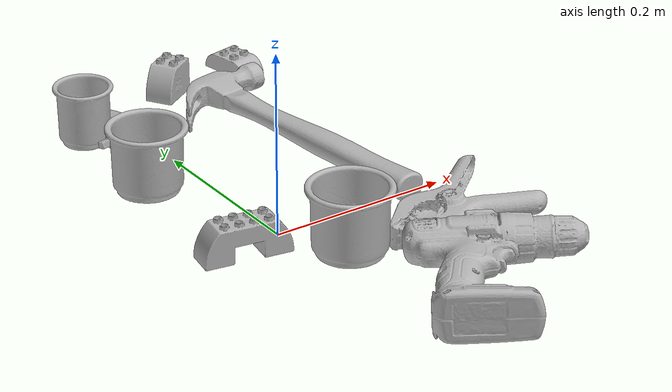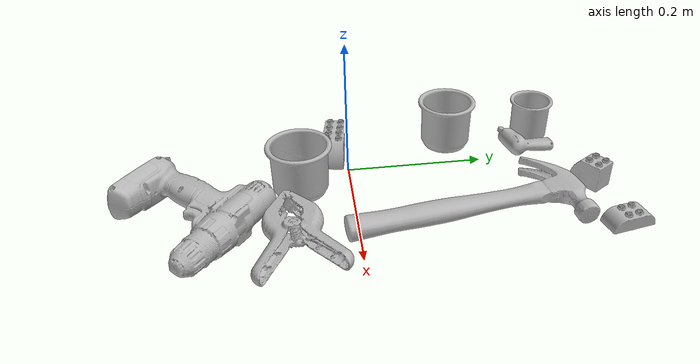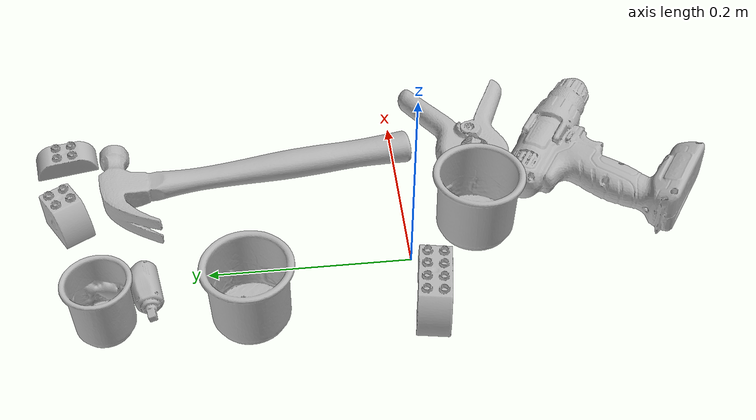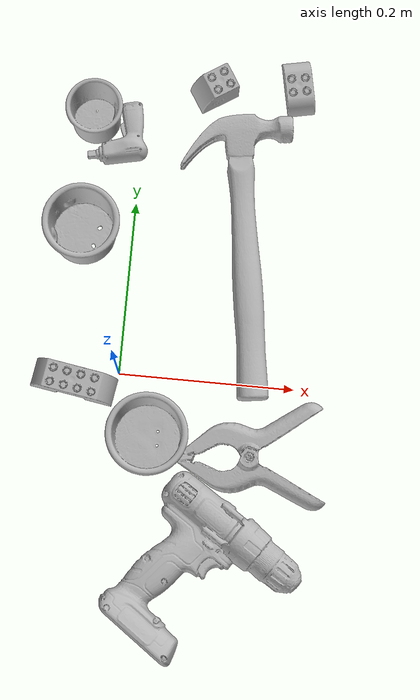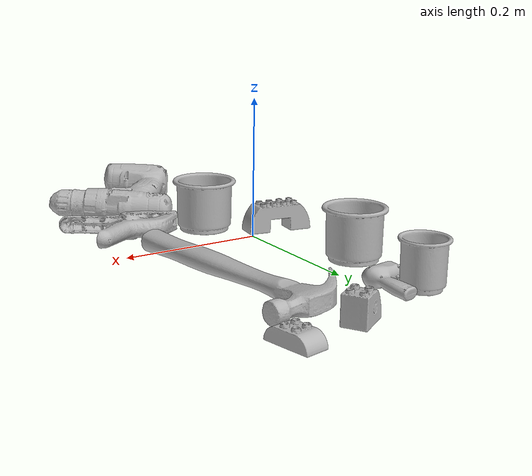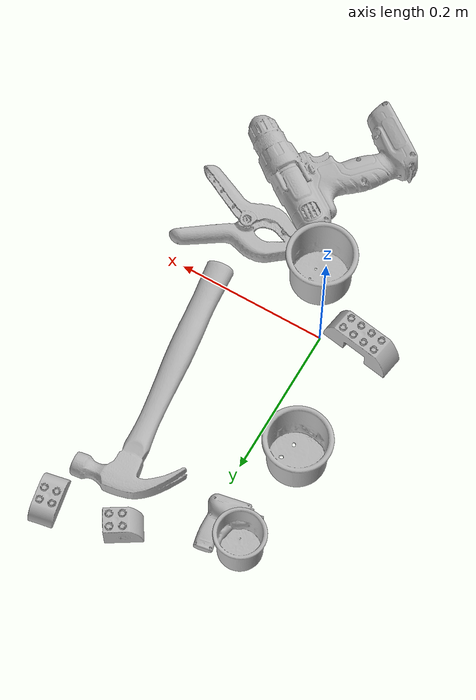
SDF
<sdf version="1.4">
  <world name="default">
    <light name="light1" type="point">
      <pose>0 0 1 0 0 0</pose>
      <diffuse>3 3 3 1</diffuse>
      <specular>3 3 3 1</specular>
    </light>
    <light name="light2" type="point">
      <pose>0 0.5 2 0 0 0</pose>
      <diffuse>1 1 1 1</diffuse>
      <specular>1 1 1 1</specular>
    </light>
    <light name="light3" type="point">
      <pose>0 0.5 2 0 0 0</pose>
      <diffuse>3 3 3 1</diffuse>
      <specular>3 3 3 1</specular>
    </light>
    <scene>
      <ambient>0.7 0.7 0.7</ambient>
    </scene>
    <model name="cup1">
      <link name="link_cup1">
        <collision name="default">
          <geometry>
            <mesh>
              <uri>model://g_cups/collision_meshes/collision.obj</uri>
              <scale>1.0 1.0 1.0</scale>
            </mesh>
          </geometry>
          <surface>
            <friction>
              <ode>
                <mu>0.5</mu>
                <mu2>0.5</mu2>
              </ode>
            </friction>
          <contact>
        <ode>
            <max_vel>0</max_vel>
            <min_depth>0.0001</min_depth>
            <kp>1e8</kp>
        </ode>
    </contact></surface>
        </collision>
        <visual name="default">
          <geometry>
            <mesh>
              <uri>model://g_cups/visual_meshes/visual.dae</uri>
              <scale>1.0 1.0 1.0</scale>
            </mesh>
          </geometry>
        </visual>
        <inertial>
          <mass>0.057625629007816315</mass>
          <pose>-0.0007946282275952399 -4.206500670989044e-05 -0.0021329375449568033 -0.21382697289054745 -0.3141031271963666 0.3112149002706268</pose>
          <inertia>
            <ixx>6.726202e-05</ixx>
            <iyy>6.7033216e-05</iyy>
            <izz>6.967186e-05</izz>
            <ixy>0</ixy>
            <ixz>0</ixz>
            <iyz>0</iyz>
          </inertia>
        </inertial>
      </link>
      <pose>-0.05615714564919472 0.1588095724582672 0.03720300644636154 -1.745395565300669e-07 -7.429679926340148e-07 1.2215825203758968</pose>
    </model>
    <model name="cup2">
      <link name="link_cup2">
        <collision name="default">
          <geometry>
            <mesh>
              <uri>model://c_cups/collision_meshes/collision.obj</uri>
              <scale>1.0 1.0 1.0</scale>
            </mesh>
          </geometry>
          <surface>
            <friction>
              <ode>
                <mu>0.5</mu>
                <mu2>0.5</mu2>
              </ode>
            </friction>
          <contact>
        <ode>
            <max_vel>0</max_vel>
            <min_depth>0.0001</min_depth>
            <kp>1e8</kp>
        </ode>
    </contact></surface>
        </collision>
        <visual name="default">
          <geometry>
            <mesh>
              <uri>model://c_cups/visual_meshes/visual.dae</uri>
              <scale>1.0 1.0 1.0</scale>
            </mesh>
          </geometry>
        </visual>
        <inertial>
          <mass>0.03477548435330391</mass>
          <pose>0.0007237261161208153 0.0020153902005404234 -0.0012750983005389571 0.30215732346046187 0.013461711857135551 -0.08771879968331305</pose>
          <inertia>
            <ixx>2.5862058e-05</ixx>
            <iyy>2.540504e-05</iyy>
            <izz>2.2871589e-05</izz>
            <ixy>0</ixy>
            <ixz>0</ixz>
            <iyz>0</iyz>
          </inertia>
        </inertial>
      </link>
      <pose>-0.055026840418577194 0.29338738322257996 0.033459652215242386 4.1699927769990365e-05 -1.6251428849282706e-05 -1.8270822058450638</pose>
    </model>
    <model name="cup3">
      <link name="link_cup3">
        <collision name="default">
          <geometry>
            <mesh>
              <uri>model://h_cups/collision_meshes/collision.obj</uri>
              <scale>1.0 1.0 1.0</scale>
            </mesh>
          </geometry>
          <surface>
            <friction>
              <ode>
                <mu>0.5</mu>
                <mu2>0.5</mu2>
              </ode>
            </friction>
          <contact>
        <ode>
            <max_vel>0</max_vel>
            <min_depth>0.0001</min_depth>
            <kp>1e8</kp>
        </ode>
    </contact></surface>
        </collision>
        <visual name="default">
          <geometry>
            <mesh>
              <uri>model://h_cups/visual_meshes/visual.dae</uri>
              <scale>1.0 1.0 1.0</scale>
            </mesh>
          </geometry>
        </visual>
        <inertial>
          <mass>0.050017159432172775</mass>
          <pose>-2.702731035242323e-05 0.0002301866770721972 -0.0018405388109385967 -0.024362003715272553 0.06545245272055236 0.12885201823743497</pose>
          <inertia>
            <ixx>6.459484e-05</ixx>
            <iyy>6.382401e-05</iyy>
            <izz>6.774227e-05</izz>
            <ixy>0</ixy>
            <ixz>0</ixz>
            <iyz>0</iyz>
          </inertia>
        </inertial>
      </link>
      <pose>0.0397484190762043 -0.07061777263879776 0.03775813430547714 -1.1906928978916486e-05 -4.335646249666343e-05 3.078606711698607</pose>
    </model>
    <model name="toy1">
      <link name="link_toy1">
        <collision name="default">
          <geometry>
            <mesh>
              <uri>model://e_lego_duplo/collision_meshes/collision.obj</uri>
              <scale>1.0 1.0 1.0</scale>
            </mesh>
          </geometry>
          <surface>
            <friction>
              <ode>
                <mu>0.5</mu>
                <mu2>0.5</mu2>
              </ode>
            </friction>
          <contact>
        <ode>
            <max_vel>0</max_vel>
            <min_depth>0.0001</min_depth>
            <kp>1e8</kp>
        </ode>
    </contact></surface>
        </collision>
        <visual name="default">
          <geometry>
            <mesh>
              <uri>model://e_lego_duplo/visual_meshes/visual.dae</uri>
              <scale>1.0 1.0 1.0</scale>
            </mesh>
          </geometry>
        </visual>
        <inertial>
          <mass>0.09100330621004105</mass>
          <pose>0.0003256048948969692 0.00023485418932978064 0.0019521461799740791 -0.02256778535698338 -6.825395529084007e-05 -0.0076251622764869605</pose>
          <inertia>
            <ixx>1.897719e-05</ixx>
            <iyy>7.788726e-05</iyy>
            <izz>7.584653e-05</izz>
            <ixy>0</ixy>
            <ixz>0</ixz>
            <iyz>0</iyz>
          </inertia>
        </inertial>
      </link>
      <pose>-0.05034111440181732 -0.014830323867499828 0.021809007972478867 3.393898753786077e-07 -4.317542022576346e-08 2.9836743614004173</pose>
    </model>
    <model name="toy2">
      <link name="link_toy2">
        <collision name="default">
          <geometry>
            <mesh>
              <uri>model://b_toy_airplane/collision_meshes/collision.obj</uri>
              <scale>0.5 0.5 0.5</scale>
            </mesh>
          </geometry>
          <surface>
            <friction>
              <ode>
                <mu>0.5</mu>
                <mu2>0.5</mu2>
              </ode>
            </friction>
          <contact>
        <ode>
            <max_vel>0</max_vel>
            <min_depth>0.0001</min_depth>
            <kp>1e8</kp>
        </ode>
    </contact></surface>
        </collision>
        <visual name="default">
          <geometry>
            <mesh>
              <uri>model://b_toy_airplane/visual_meshes/visual.dae</uri>
              <scale>0.5 0.5 0.5</scale>
            </mesh>
          </geometry>
        </visual>
        <inertial>
          <mass>0.06363805383443832</mass>
          <pose>0.002540681976824999 0.0020077931694686413 0.004771532956510782 -0.0400181041712346 -0.04022185546555606 -0.5601502891427816</pose>
          <inertia>
            <ixx>2.9536302e-05</ixx>
            <iyy>1.1805946e-05</iyy>
            <izz>3.6746103e-05</izz>
            <ixy>0</ixy>
            <ixz>0</ixz>
            <iyz>0</iyz>
          </inertia>
        </inertial>
      </link>
      <pose>-0.016434725373983383 0.2717863917350769 0.008427171036601067 0.1762972218313373 0.031660025456993784 -2.9367585203129125</pose>
    </model>
    <model name="toy3">
      <link name="link_toy3">
        <collision name="default">
          <geometry>
            <mesh>
              <uri>model://d_lego_duplo/collision_meshes/collision.obj</uri>
              <scale>1.0 1.0 1.0</scale>
            </mesh>
          </geometry>
          <surface>
            <friction>
              <ode>
                <mu>0.5</mu>
                <mu2>0.5</mu2>
              </ode>
            </friction>
          <contact>
        <ode>
            <max_vel>0</max_vel>
            <min_depth>0.0001</min_depth>
            <kp>1e8</kp>
        </ode>
    </contact></surface>
        </collision>
        <visual name="default">
          <geometry>
            <mesh>
              <uri>model://d_lego_duplo/visual_meshes/visual.dae</uri>
              <scale>1.0 1.0 1.0</scale>
            </mesh>
          </geometry>
        </visual>
        <inertial>
          <mass>0.05334000289440155</mass>
          <pose>0.002830563811585307 0.0001636617089388892 0.0008589810458943248 0.0801090676593232 -0.3835525121717052 0.0010296416750687279</pose>
          <inertia>
            <ixx>1.0325837e-05</ixx>
            <iyy>1.4655165e-05</iyy>
            <izz>1.4132847e-05</izz>
            <ixy>0</ixy>
            <ixz>0</ixz>
            <iyz>0</iyz>
          </inertia>
        </inertial>
      </link>
      <pose>0.07865698635578156 0.3407834768295288 0.02173999696969986 -1.0789732600466954e-06 -7.003284973476874e-07 0.563082311256416</pose>
    </model>
    <model name="toy4">
      <link name="link_toy4">
        <collision name="default">
          <geometry>
            <mesh>
              <uri>model://a_lego_duplo/collision_meshes/collision.obj</uri>
              <scale>1.0 1.0 1.0</scale>
            </mesh>
          </geometry>
          <surface>
            <friction>
              <ode>
                <mu>0.5</mu>
                <mu2>0.5</mu2>
              </ode>
            </friction>
          <contact>
        <ode>
            <max_vel>0</max_vel>
            <min_depth>0.0001</min_depth>
            <kp>1e8</kp>
        </ode>
    </contact></surface>
        </collision>
        <visual name="default">
          <geometry>
            <mesh>
              <uri>model://a_lego_duplo/visual_meshes/visual.dae</uri>
              <scale>1.0 1.0 1.0</scale>
            </mesh>
          </geometry>
        </visual>
        <inertial>
          <mass>0.02371947281062603</mass>
          <pose>-0.00011337659088894725 0.00018517536227591336 0.00036926098982803524 -0.014117032318495473 -0.00012566219654468525 6.139472672246545e-05</pose>
          <inertia>
            <ixx>3.0410272e-06</ixx>
            <iyy>6.8125664e-06</iyy>
            <izz>8.438875e-06</izz>
            <ixy>0</ixy>
            <ixz>0</ixz>
            <iyz>0</iyz>
          </inertia>
        </inertial>
      </link>
      <pose>0.1761617213487625 0.3544999957084656 0.012111999094486237 1.4739537937557507e-08 -3.2487208128398236e-08 1.772472956992672</pose>
    </model>
    <model name="hardware1">
      <link name="link_hardware1">
        <collision name="default">
          <geometry>
            <mesh>
              <uri>model://hammer/collision_meshes/collision.obj</uri>
              <scale>1.0 1.0 1.0</scale>
            </mesh>
          </geometry>
          <surface>
            <friction>
              <ode>
                <mu>0.5</mu>
                <mu2>0.5</mu2>
              </ode>
            </friction>
          <contact>
        <ode>
            <max_vel>0</max_vel>
            <min_depth>0.0001</min_depth>
            <kp>1e8</kp>
        </ode>
    </contact></surface>
        </collision>
        <visual name="default">
          <geometry>
            <mesh>
              <uri>model://hammer/visual_meshes/visual.dae</uri>
              <scale>1.0 1.0 1.0</scale>
            </mesh>
          </geometry>
        </visual>
        <inertial>
          <mass>0.21542595326900482</mass>
          <pose>0.009415775537490845 -0.011892358772456646 -0.00012350629549473524 0.02315578421630864 -0.004792165572519315 -0.012760317567756519</pose>
          <inertia>
            <ixx>9.2278024e-05</ixx>
            <iyy>0.0025004656</iyy>
            <izz>0.002572105</izz>
            <ixy>0</ixy>
            <ixz>0</ixz>
            <iyz>0</iyz>
          </inertia>
        </inertial>
      </link>
      <pose>0.11951486766338348 0.15712454915046692 0.01626737043261528 -0.005199114971559115 -0.0013802357328617165 1.7062341148035267</pose>
    </model>
    <model name="hardware2">
      <link name="link_hardware2">
        <collision name="default">
          <geometry>
            <mesh>
              <uri>model://large_clamp/collision_meshes/collision.obj</uri>
              <scale>1.0 1.0 1.0</scale>
            </mesh>
          </geometry>
          <surface>
            <friction>
              <ode>
                <mu>0.5</mu>
                <mu2>0.5</mu2>
              </ode>
            </friction>
          <contact>
        <ode>
            <max_vel>0</max_vel>
            <min_depth>0.0001</min_depth>
            <kp>1e8</kp>
        </ode>
    </contact></surface>
        </collision>
        <visual name="default">
          <geometry>
            <mesh>
              <uri>model://large_clamp/visual_meshes/visual.dae</uri>
              <scale>1.0 1.0 1.0</scale>
            </mesh>
          </geometry>
        </visual>
        <inertial>
          <mass>0.16898278892040253</mass>
          <pose>0.006369357462972403 0.00035856629256159067 -0.00018398034444544464 -0.002133075920149734 0.009671594117503977 0.026633212091596442</pose>
          <inertia>
            <ixx>0.00014908903</ixx>
            <iyy>0.00028312797</iyy>
            <izz>0.00040958088</izz>
            <ixy>0</ixy>
            <ixz>0</ixz>
            <iyz>0</iyz>
          </inertia>
        </inertial>
      </link>
      <pose>0.15684936940670013 -0.08227164298295975 0.01850435510277748 -0.011533740468356268 0.04693091297587392 -3.0574848467792632</pose>
    </model>
    <model name="hardware3">
      <link name="link_hardware3">
        <collision name="default">
          <geometry>
            <mesh>
              <uri>model://power_drill/collision_meshes/collision.obj</uri>
              <scale>1.0 1.0 1.0</scale>
            </mesh>
          </geometry>
          <surface>
            <friction>
              <ode>
                <mu>0.5</mu>
                <mu2>0.5</mu2>
              </ode>
            </friction>
          <contact>
        <ode>
            <max_vel>0</max_vel>
            <min_depth>0.0001</min_depth>
            <kp>1e8</kp>
        </ode>
    </contact></surface>
        </collision>
        <visual name="default">
          <geometry>
            <mesh>
              <uri>model://power_drill/visual_meshes/visual.dae</uri>
              <scale>1.0 1.0 1.0</scale>
            </mesh>
          </geometry>
        </visual>
        <inertial>
          <mass>0.7224003672599792</mass>
          <pose>-0.014780545607209206 0.014369428157806396 0.0012414171360433102 0.0046091635101465946 0.00407302394444766 -0.18362692290061644</pose>
          <inertia>
            <ixx>0.002943816</ixx>
            <iyy>0.0011582379</iyy>
            <izz>0.0038878287</izz>
            <ixy>0</ixy>
            <ixz>0</ixz>
            <iyz>0</iyz>
          </inertia>
        </inertial>
      </link>
      <pose>0.10688397288322449 -0.22470949590206146 0.02731246128678322 -0.03030596691153325 -0.047252929061704134 -0.6034442395353836</pose>
    </model>
  <physics type="ode">
      <max_contacts>50</max_contacts>
      <ode>
        <solver>
          <type>quick</type>
          <iters>75</iters>
        </solver>
        <constraints>
          <contact_max_correcting_vel>0</contact_max_correcting_vel>
          <contact_surface_layer>0</contact_surface_layer>
        </constraints>
      </ode>
    </physics></world>
</sdf>
